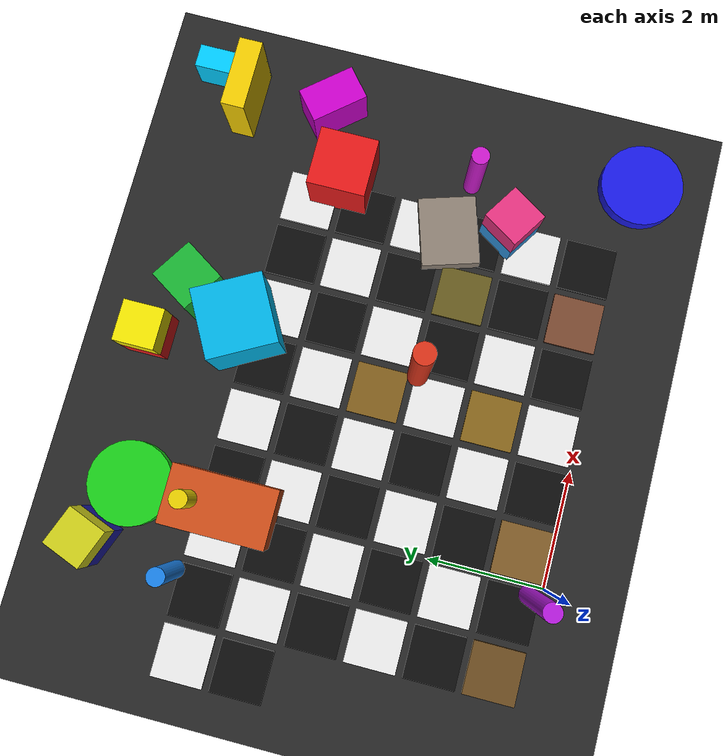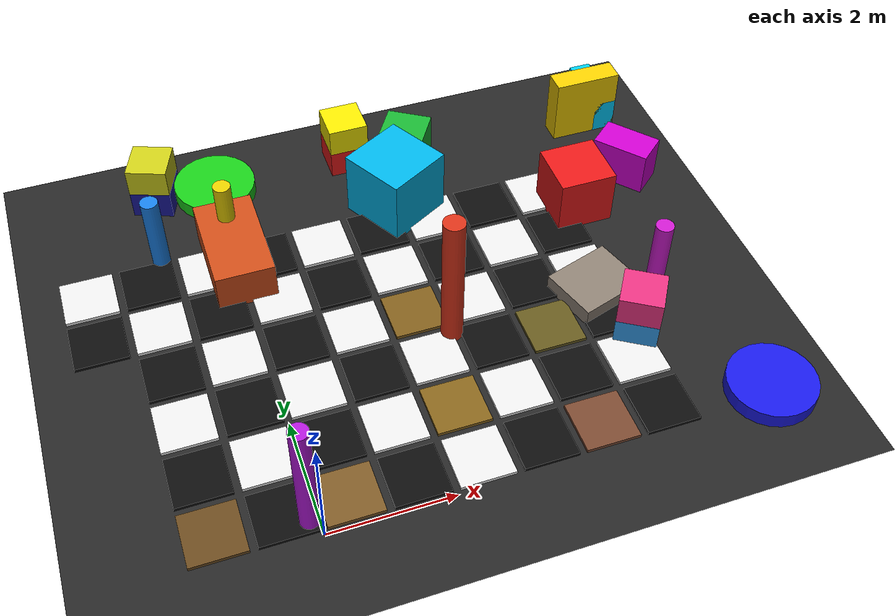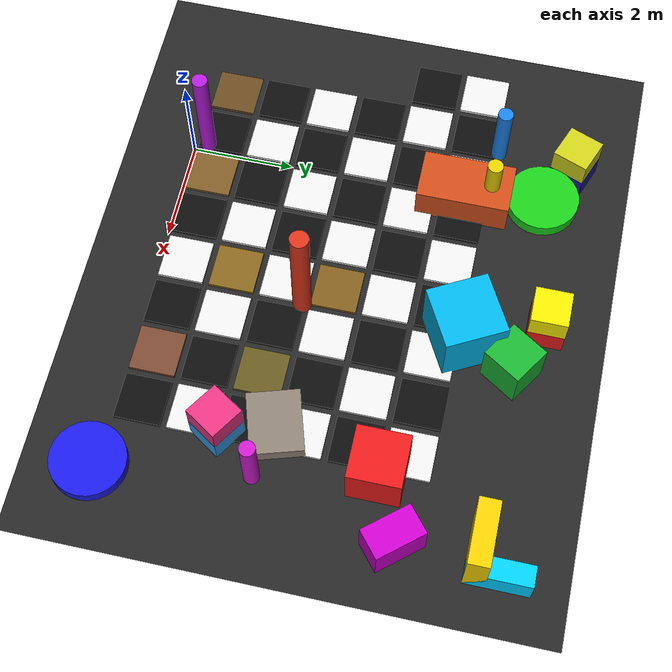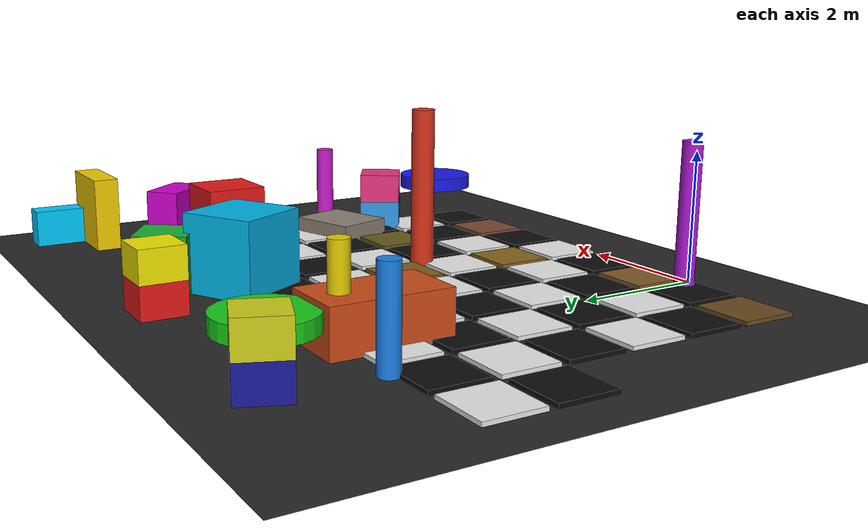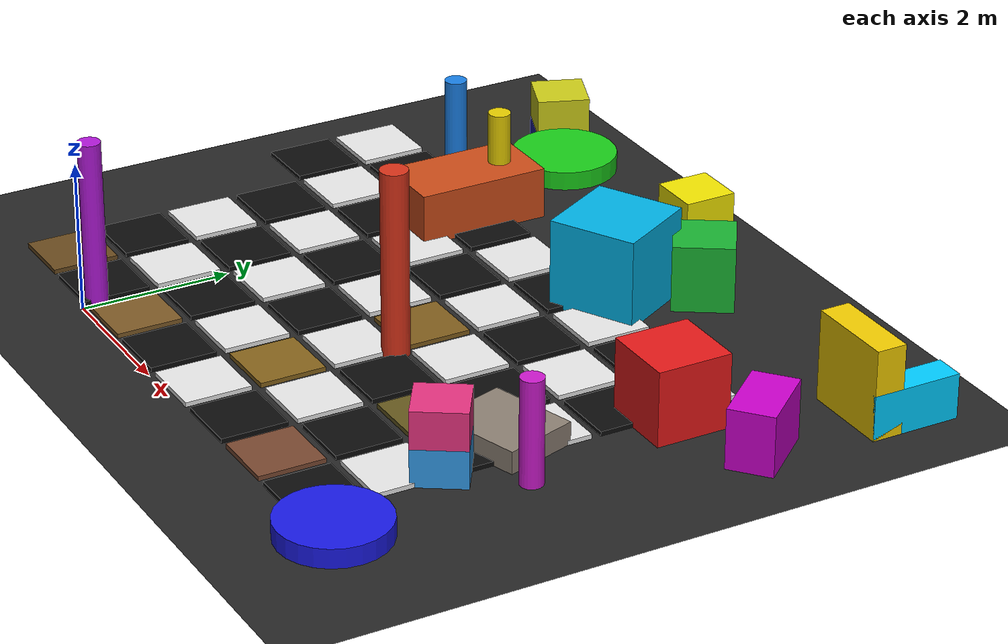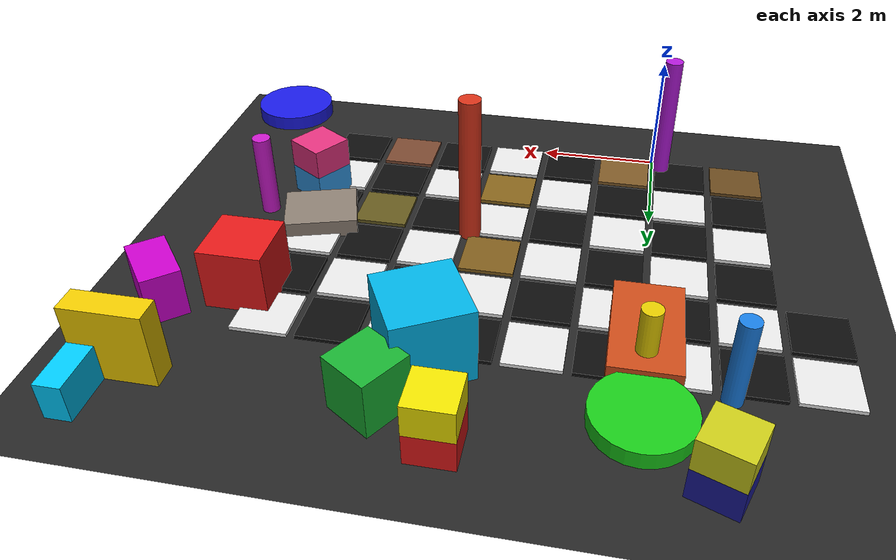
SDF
<sdf version="1.9">
 <world name="slam_world_v5_realistic">
  <model name="ground_plane">
   <static>true</static>
   <link name="ground_link">
    <collision name="collision">
     <geometry><plane><normal>0 0 1</normal><size>80 80</size></plane></geometry>
    </collision>
    <visual name="visual">
     <geometry><plane><normal>0 0 1</normal><size>80 80</size></plane></geometry>
     <material>
      <ambient>0.12 0.12 0.12 1</ambient>
      <diffuse>0.15 0.15 0.15 1</diffuse>
      <specular>0.02 0.02 0.02 1</specular>
     </material>
    </visual>
   </link>
  </model>
  <model name="cb_46">
   <static>true</static>
   <pose>-2.500 4.500 0.030 0 0 0</pose>
   <link name="link">
    <collision name="col"><geometry><box><size>0.880 0.880 0.060</size></box></geometry></collision>
    <visual name="vis">
     <geometry><box><size>0.880 0.880 0.060</size></box></geometry>
     <material>
      <ambient>0.050 0.050 0.050 1</ambient>
      <diffuse>0.050 0.050 0.050 1</diffuse>
      <specular>0.020 0.020 0.020 1</specular>
     </material>
    </visual>
   </link>
  </model>
  <model name="cb_47">
   <static>true</static>
   <pose>-2.500 5.500 0.030 0 0 0</pose>
   <link name="link">
    <collision name="col"><geometry><box><size>0.880 0.880 0.060</size></box></geometry></collision>
    <visual name="vis">
     <geometry><box><size>0.880 0.880 0.060</size></box></geometry>
     <material>
      <ambient>0.910 0.910 0.910 1</ambient>
      <diffuse>0.910 0.910 0.910 1</diffuse>
      <specular>0.080 0.080 0.080 1</specular>
     </material>
    </visual>
   </link>
  </model>
  <model name="cb_54">
   <static>true</static>
   <pose>-1.500 0.500 0.030 0 0 0</pose>
   <link name="link">
    <collision name="col"><geometry><box><size>0.880 0.880 0.060</size></box></geometry></collision>
    <visual name="vis">
     <geometry><box><size>0.880 0.880 0.060</size></box></geometry>
     <material>
      <ambient>0.413 0.290 0.121 1</ambient>
      <diffuse>0.413 0.290 0.121 1</diffuse>
      <specular>0.020 0.020 0.020 1</specular>
     </material>
    </visual>
   </link>
  </model>
  <model name="cb_55">
   <static>true</static>
   <pose>-1.500 1.500 0.030 0 0 0</pose>
   <link name="link">
    <collision name="col"><geometry><box><size>0.880 0.880 0.060</size></box></geometry></collision>
    <visual name="vis">
     <geometry><box><size>0.880 0.880 0.060</size></box></geometry>
     <material>
      <ambient>0.050 0.050 0.050 1</ambient>
      <diffuse>0.050 0.050 0.050 1</diffuse>
      <specular>0.020 0.020 0.020 1</specular>
     </material>
    </visual>
   </link>
  </model>
  <model name="cb_56">
   <static>true</static>
   <pose>-1.500 2.500 0.030 0 0 0</pose>
   <link name="link">
    <collision name="col"><geometry><box><size>0.880 0.880 0.060</size></box></geometry></collision>
    <visual name="vis">
     <geometry><box><size>0.880 0.880 0.060</size></box></geometry>
     <material>
      <ambient>0.910 0.910 0.910 1</ambient>
      <diffuse>0.910 0.910 0.910 1</diffuse>
      <specular>0.080 0.080 0.080 1</specular>
     </material>
    </visual>
   </link>
  </model>
  <model name="cb_57">
   <static>true</static>
   <pose>-1.500 3.500 0.030 0 0 0</pose>
   <link name="link">
    <collision name="col"><geometry><box><size>0.880 0.880 0.060</size></box></geometry></collision>
    <visual name="vis">
     <geometry><box><size>0.880 0.880 0.060</size></box></geometry>
     <material>
      <ambient>0.050 0.050 0.050 1</ambient>
      <diffuse>0.050 0.050 0.050 1</diffuse>
      <specular>0.020 0.020 0.020 1</specular>
     </material>
    </visual>
   </link>
  </model>
  <model name="cb_58">
   <static>true</static>
   <pose>-1.500 4.500 0.030 0 0 0</pose>
   <link name="link">
    <collision name="col"><geometry><box><size>0.880 0.880 0.060</size></box></geometry></collision>
    <visual name="vis">
     <geometry><box><size>0.880 0.880 0.060</size></box></geometry>
     <material>
      <ambient>0.910 0.910 0.910 1</ambient>
      <diffuse>0.910 0.910 0.910 1</diffuse>
      <specular>0.080 0.080 0.080 1</specular>
     </material>
    </visual>
   </link>
  </model>
  <model name="cb_59">
   <static>true</static>
   <pose>-1.500 5.500 0.030 0 0 0</pose>
   <link name="link">
    <collision name="col"><geometry><box><size>0.880 0.880 0.060</size></box></geometry></collision>
    <visual name="vis">
     <geometry><box><size>0.880 0.880 0.060</size></box></geometry>
     <material>
      <ambient>0.050 0.050 0.050 1</ambient>
      <diffuse>0.050 0.050 0.050 1</diffuse>
      <specular>0.020 0.020 0.020 1</specular>
     </material>
    </visual>
   </link>
  </model>
  <model name="cb_66">
   <static>true</static>
   <pose>-0.500 0.500 0.030 0 0 0</pose>
   <link name="link">
    <collision name="col"><geometry><box><size>0.880 0.880 0.060</size></box></geometry></collision>
    <visual name="vis">
     <geometry><box><size>0.880 0.880 0.060</size></box></geometry>
     <material>
      <ambient>0.050 0.050 0.050 1</ambient>
      <diffuse>0.050 0.050 0.050 1</diffuse>
      <specular>0.020 0.020 0.020 1</specular>
     </material>
    </visual>
   </link>
  </model>
  <model name="cb_67">
   <static>true</static>
   <pose>-0.500 1.500 0.030 0 0 0</pose>
   <link name="link">
    <collision name="col"><geometry><box><size>0.880 0.880 0.060</size></box></geometry></collision>
    <visual name="vis">
     <geometry><box><size>0.880 0.880 0.060</size></box></geometry>
     <material>
      <ambient>0.910 0.910 0.910 1</ambient>
      <diffuse>0.910 0.910 0.910 1</diffuse>
      <specular>0.080 0.080 0.080 1</specular>
     </material>
    </visual>
   </link>
  </model>
  <model name="cb_68">
   <static>true</static>
   <pose>-0.500 2.500 0.030 0 0 0</pose>
   <link name="link">
    <collision name="col"><geometry><box><size>0.880 0.880 0.060</size></box></geometry></collision>
    <visual name="vis">
     <geometry><box><size>0.880 0.880 0.060</size></box></geometry>
     <material>
      <ambient>0.050 0.050 0.050 1</ambient>
      <diffuse>0.050 0.050 0.050 1</diffuse>
      <specular>0.020 0.020 0.020 1</specular>
     </material>
    </visual>
   </link>
  </model>
  <model name="cb_69">
   <static>true</static>
   <pose>-0.500 3.500 0.030 0 0 0</pose>
   <link name="link">
    <collision name="col"><geometry><box><size>0.880 0.880 0.060</size></box></geometry></collision>
    <visual name="vis">
     <geometry><box><size>0.880 0.880 0.060</size></box></geometry>
     <material>
      <ambient>0.910 0.910 0.910 1</ambient>
      <diffuse>0.910 0.910 0.910 1</diffuse>
      <specular>0.080 0.080 0.080 1</specular>
     </material>
    </visual>
   </link>
  </model>
  <model name="cb_70">
   <static>true</static>
   <pose>-0.500 4.500 0.030 0 0 0</pose>
   <link name="link">
    <collision name="col"><geometry><box><size>0.880 0.880 0.060</size></box></geometry></collision>
    <visual name="vis">
     <geometry><box><size>0.880 0.880 0.060</size></box></geometry>
     <material>
      <ambient>0.050 0.050 0.050 1</ambient>
      <diffuse>0.050 0.050 0.050 1</diffuse>
      <specular>0.020 0.020 0.020 1</specular>
     </material>
    </visual>
   </link>
  </model>
  <model name="cb_71">
   <static>true</static>
   <pose>-0.500 5.500 0.030 0 0 0</pose>
   <link name="link">
    <collision name="col"><geometry><box><size>0.880 0.880 0.060</size></box></geometry></collision>
    <visual name="vis">
     <geometry><box><size>0.880 0.880 0.060</size></box></geometry>
     <material>
      <ambient>0.910 0.910 0.910 1</ambient>
      <diffuse>0.910 0.910 0.910 1</diffuse>
      <specular>0.080 0.080 0.080 1</specular>
     </material>
    </visual>
   </link>
  </model>
  <model name="cb_78">
   <static>true</static>
   <pose>0.500 0.500 0.030 0 0 0</pose>
   <link name="link">
    <collision name="col"><geometry><box><size>0.880 0.880 0.060</size></box></geometry></collision>
    <visual name="vis">
     <geometry><box><size>0.880 0.880 0.060</size></box></geometry>
     <material>
      <ambient>0.494 0.352 0.154 1</ambient>
      <diffuse>0.494 0.352 0.154 1</diffuse>
      <specular>0.020 0.020 0.020 1</specular>
     </material>
    </visual>
   </link>
  </model>
  <model name="cb_79">
   <static>true</static>
   <pose>0.500 1.500 0.030 0 0 0</pose>
   <link name="link">
    <collision name="col"><geometry><box><size>0.880 0.880 0.060</size></box></geometry></collision>
    <visual name="vis">
     <geometry><box><size>0.880 0.880 0.060</size></box></geometry>
     <material>
      <ambient>0.050 0.050 0.050 1</ambient>
      <diffuse>0.050 0.050 0.050 1</diffuse>
      <specular>0.020 0.020 0.020 1</specular>
     </material>
    </visual>
   </link>
  </model>
  <model name="cb_80">
   <static>true</static>
   <pose>0.500 2.500 0.030 0 0 0</pose>
   <link name="link">
    <collision name="col"><geometry><box><size>0.880 0.880 0.060</size></box></geometry></collision>
    <visual name="vis">
     <geometry><box><size>0.880 0.880 0.060</size></box></geometry>
     <material>
      <ambient>0.910 0.910 0.910 1</ambient>
      <diffuse>0.910 0.910 0.910 1</diffuse>
      <specular>0.080 0.080 0.080 1</specular>
     </material>
    </visual>
   </link>
  </model>
  <model name="cb_81">
   <static>true</static>
   <pose>0.500 3.500 0.030 0 0 0</pose>
   <link name="link">
    <collision name="col"><geometry><box><size>0.880 0.880 0.060</size></box></geometry></collision>
    <visual name="vis">
     <geometry><box><size>0.880 0.880 0.060</size></box></geometry>
     <material>
      <ambient>0.050 0.050 0.050 1</ambient>
      <diffuse>0.050 0.050 0.050 1</diffuse>
      <specular>0.020 0.020 0.020 1</specular>
     </material>
    </visual>
   </link>
  </model>
  <model name="cb_82">
   <static>true</static>
   <pose>0.500 4.500 0.030 0 0 0</pose>
   <link name="link">
    <collision name="col"><geometry><box><size>0.880 0.880 0.060</size></box></geometry></collision>
    <visual name="vis">
     <geometry><box><size>0.880 0.880 0.060</size></box></geometry>
     <material>
      <ambient>0.910 0.910 0.910 1</ambient>
      <diffuse>0.910 0.910 0.910 1</diffuse>
      <specular>0.080 0.080 0.080 1</specular>
     </material>
    </visual>
   </link>
  </model>
  <model name="cb_83">
   <static>true</static>
   <pose>0.500 5.500 0.030 0 0 0</pose>
   <link name="link">
    <collision name="col"><geometry><box><size>0.880 0.880 0.060</size></box></geometry></collision>
    <visual name="vis">
     <geometry><box><size>0.880 0.880 0.060</size></box></geometry>
     <material>
      <ambient>0.050 0.050 0.050 1</ambient>
      <diffuse>0.050 0.050 0.050 1</diffuse>
      <specular>0.020 0.020 0.020 1</specular>
     </material>
    </visual>
   </link>
  </model>
  <model name="cb_90">
   <static>true</static>
   <pose>1.500 0.500 0.030 0 0 0</pose>
   <link name="link">
    <collision name="col"><geometry><box><size>0.880 0.880 0.060</size></box></geometry></collision>
    <visual name="vis">
     <geometry><box><size>0.880 0.880 0.060</size></box></geometry>
     <material>
      <ambient>0.050 0.050 0.050 1</ambient>
      <diffuse>0.050 0.050 0.050 1</diffuse>
      <specular>0.020 0.020 0.020 1</specular>
     </material>
    </visual>
   </link>
  </model>
  <model name="cb_91">
   <static>true</static>
   <pose>1.500 1.500 0.030 0 0 0</pose>
   <link name="link">
    <collision name="col"><geometry><box><size>0.880 0.880 0.060</size></box></geometry></collision>
    <visual name="vis">
     <geometry><box><size>0.880 0.880 0.060</size></box></geometry>
     <material>
      <ambient>0.910 0.910 0.910 1</ambient>
      <diffuse>0.910 0.910 0.910 1</diffuse>
      <specular>0.080 0.080 0.080 1</specular>
     </material>
    </visual>
   </link>
  </model>
  <model name="cb_92">
   <static>true</static>
   <pose>1.500 2.500 0.030 0 0 0</pose>
   <link name="link">
    <collision name="col"><geometry><box><size>0.880 0.880 0.060</size></box></geometry></collision>
    <visual name="vis">
     <geometry><box><size>0.880 0.880 0.060</size></box></geometry>
     <material>
      <ambient>0.050 0.050 0.050 1</ambient>
      <diffuse>0.050 0.050 0.050 1</diffuse>
      <specular>0.020 0.020 0.020 1</specular>
     </material>
    </visual>
   </link>
  </model>
  <model name="cb_93">
   <static>true</static>
   <pose>1.500 3.500 0.030 0 0 0</pose>
   <link name="link">
    <collision name="col"><geometry><box><size>0.880 0.880 0.060</size></box></geometry></collision>
    <visual name="vis">
     <geometry><box><size>0.880 0.880 0.060</size></box></geometry>
     <material>
      <ambient>0.910 0.910 0.910 1</ambient>
      <diffuse>0.910 0.910 0.910 1</diffuse>
      <specular>0.080 0.080 0.080 1</specular>
     </material>
    </visual>
   </link>
  </model>
  <model name="cb_94">
   <static>true</static>
   <pose>1.500 4.500 0.030 0 0 0</pose>
   <link name="link">
    <collision name="col"><geometry><box><size>0.880 0.880 0.060</size></box></geometry></collision>
    <visual name="vis">
     <geometry><box><size>0.880 0.880 0.060</size></box></geometry>
     <material>
      <ambient>0.050 0.050 0.050 1</ambient>
      <diffuse>0.050 0.050 0.050 1</diffuse>
      <specular>0.020 0.020 0.020 1</specular>
     </material>
    </visual>
   </link>
  </model>
  <model name="cb_95">
   <static>true</static>
   <pose>1.500 5.500 0.030 0 0 0</pose>
   <link name="link">
    <collision name="col"><geometry><box><size>0.880 0.880 0.060</size></box></geometry></collision>
    <visual name="vis">
     <geometry><box><size>0.880 0.880 0.060</size></box></geometry>
     <material>
      <ambient>0.910 0.910 0.910 1</ambient>
      <diffuse>0.910 0.910 0.910 1</diffuse>
      <specular>0.080 0.080 0.080 1</specular>
     </material>
    </visual>
   </link>
  </model>
  <model name="cb_102">
   <static>true</static>
   <pose>2.500 0.500 0.030 0 0 0</pose>
   <link name="link">
    <collision name="col"><geometry><box><size>0.880 0.880 0.060</size></box></geometry></collision>
    <visual name="vis">
     <geometry><box><size>0.880 0.880 0.060</size></box></geometry>
     <material>
      <ambient>0.910 0.910 0.910 1</ambient>
      <diffuse>0.910 0.910 0.910 1</diffuse>
      <specular>0.080 0.080 0.080 1</specular>
     </material>
    </visual>
   </link>
  </model>
  <model name="cb_103">
   <static>true</static>
   <pose>2.500 1.500 0.030 0 0 0</pose>
   <link name="link">
    <collision name="col"><geometry><box><size>0.880 0.880 0.060</size></box></geometry></collision>
    <visual name="vis">
     <geometry><box><size>0.880 0.880 0.060</size></box></geometry>
     <material>
      <ambient>0.526 0.392 0.109 1</ambient>
      <diffuse>0.526 0.392 0.109 1</diffuse>
      <specular>0.020 0.020 0.020 1</specular>
     </material>
    </visual>
   </link>
  </model>
  <model name="cb_104">
   <static>true</static>
   <pose>2.500 2.500 0.030 0 0 0</pose>
   <link name="link">
    <collision name="col"><geometry><box><size>0.880 0.880 0.060</size></box></geometry></collision>
    <visual name="vis">
     <geometry><box><size>0.880 0.880 0.060</size></box></geometry>
     <material>
      <ambient>0.910 0.910 0.910 1</ambient>
      <diffuse>0.910 0.910 0.910 1</diffuse>
      <specular>0.080 0.080 0.080 1</specular>
     </material>
    </visual>
   </link>
  </model>
  <model name="cb_105">
   <static>true</static>
   <pose>2.500 3.500 0.030 0 0 0</pose>
   <link name="link">
    <collision name="col"><geometry><box><size>0.880 0.880 0.060</size></box></geometry></collision>
    <visual name="vis">
     <geometry><box><size>0.880 0.880 0.060</size></box></geometry>
     <material>
      <ambient>0.502 0.365 0.113 1</ambient>
      <diffuse>0.502 0.365 0.113 1</diffuse>
      <specular>0.020 0.020 0.020 1</specular>
     </material>
    </visual>
   </link>
  </model>
  <model name="cb_106">
   <static>true</static>
   <pose>2.500 4.500 0.030 0 0 0</pose>
   <link name="link">
    <collision name="col"><geometry><box><size>0.880 0.880 0.060</size></box></geometry></collision>
    <visual name="vis">
     <geometry><box><size>0.880 0.880 0.060</size></box></geometry>
     <material>
      <ambient>0.910 0.910 0.910 1</ambient>
      <diffuse>0.910 0.910 0.910 1</diffuse>
      <specular>0.080 0.080 0.080 1</specular>
     </material>
    </visual>
   </link>
  </model>
  <model name="cb_107">
   <static>true</static>
   <pose>2.500 5.500 0.030 0 0 0</pose>
   <link name="link">
    <collision name="col"><geometry><box><size>0.880 0.880 0.060</size></box></geometry></collision>
    <visual name="vis">
     <geometry><box><size>0.880 0.880 0.060</size></box></geometry>
     <material>
      <ambient>0.050 0.050 0.050 1</ambient>
      <diffuse>0.050 0.050 0.050 1</diffuse>
      <specular>0.020 0.020 0.020 1</specular>
     </material>
    </visual>
   </link>
  </model>
  <model name="cb_114">
   <static>true</static>
   <pose>3.500 0.500 0.030 0 0 0</pose>
   <link name="link">
    <collision name="col"><geometry><box><size>0.880 0.880 0.060</size></box></geometry></collision>
    <visual name="vis">
     <geometry><box><size>0.880 0.880 0.060</size></box></geometry>
     <material>
      <ambient>0.050 0.050 0.050 1</ambient>
      <diffuse>0.050 0.050 0.050 1</diffuse>
      <specular>0.020 0.020 0.020 1</specular>
     </material>
    </visual>
   </link>
  </model>
  <model name="cb_115">
   <static>true</static>
   <pose>3.500 1.500 0.030 0 0 0</pose>
   <link name="link">
    <collision name="col"><geometry><box><size>0.880 0.880 0.060</size></box></geometry></collision>
    <visual name="vis">
     <geometry><box><size>0.880 0.880 0.060</size></box></geometry>
     <material>
      <ambient>0.910 0.910 0.910 1</ambient>
      <diffuse>0.910 0.910 0.910 1</diffuse>
      <specular>0.080 0.080 0.080 1</specular>
     </material>
    </visual>
   </link>
  </model>
  <model name="cb_116">
   <static>true</static>
   <pose>3.500 2.500 0.030 0 0 0</pose>
   <link name="link">
    <collision name="col"><geometry><box><size>0.880 0.880 0.060</size></box></geometry></collision>
    <visual name="vis">
     <geometry><box><size>0.880 0.880 0.060</size></box></geometry>
     <material>
      <ambient>0.050 0.050 0.050 1</ambient>
      <diffuse>0.050 0.050 0.050 1</diffuse>
      <specular>0.020 0.020 0.020 1</specular>
     </material>
    </visual>
   </link>
  </model>
  <model name="cb_117">
   <static>true</static>
   <pose>3.500 3.500 0.030 0 0 0</pose>
   <link name="link">
    <collision name="col"><geometry><box><size>0.880 0.880 0.060</size></box></geometry></collision>
    <visual name="vis">
     <geometry><box><size>0.880 0.880 0.060</size></box></geometry>
     <material>
      <ambient>0.910 0.910 0.910 1</ambient>
      <diffuse>0.910 0.910 0.910 1</diffuse>
      <specular>0.080 0.080 0.080 1</specular>
     </material>
    </visual>
   </link>
  </model>
  <model name="cb_118">
   <static>true</static>
   <pose>3.500 4.500 0.030 0 0 0</pose>
   <link name="link">
    <collision name="col"><geometry><box><size>0.880 0.880 0.060</size></box></geometry></collision>
    <visual name="vis">
     <geometry><box><size>0.880 0.880 0.060</size></box></geometry>
     <material>
      <ambient>0.050 0.050 0.050 1</ambient>
      <diffuse>0.050 0.050 0.050 1</diffuse>
      <specular>0.020 0.020 0.020 1</specular>
     </material>
    </visual>
   </link>
  </model>
  <model name="cb_119">
   <static>true</static>
   <pose>3.500 5.500 0.030 0 0 0</pose>
   <link name="link">
    <collision name="col"><geometry><box><size>0.880 0.880 0.060</size></box></geometry></collision>
    <visual name="vis">
     <geometry><box><size>0.880 0.880 0.060</size></box></geometry>
     <material>
      <ambient>0.910 0.910 0.910 1</ambient>
      <diffuse>0.910 0.910 0.910 1</diffuse>
      <specular>0.080 0.080 0.080 1</specular>
     </material>
    </visual>
   </link>
  </model>
  <model name="cb_126">
   <static>true</static>
   <pose>4.500 0.500 0.030 0 0 0</pose>
   <link name="link">
    <collision name="col"><geometry><box><size>0.880 0.880 0.060</size></box></geometry></collision>
    <visual name="vis">
     <geometry><box><size>0.880 0.880 0.060</size></box></geometry>
     <material>
      <ambient>0.476 0.284 0.191 1</ambient>
      <diffuse>0.476 0.284 0.191 1</diffuse>
      <specular>0.020 0.020 0.020 1</specular>
     </material>
    </visual>
   </link>
  </model>
  <model name="cb_127">
   <static>true</static>
   <pose>4.500 1.500 0.030 0 0 0</pose>
   <link name="link">
    <collision name="col"><geometry><box><size>0.880 0.880 0.060</size></box></geometry></collision>
    <visual name="vis">
     <geometry><box><size>0.880 0.880 0.060</size></box></geometry>
     <material>
      <ambient>0.050 0.050 0.050 1</ambient>
      <diffuse>0.050 0.050 0.050 1</diffuse>
      <specular>0.020 0.020 0.020 1</specular>
     </material>
    </visual>
   </link>
  </model>
  <model name="cb_128">
   <static>true</static>
   <pose>4.500 2.500 0.030 0 0 0</pose>
   <link name="link">
    <collision name="col"><geometry><box><size>0.880 0.880 0.060</size></box></geometry></collision>
    <visual name="vis">
     <geometry><box><size>0.880 0.880 0.060</size></box></geometry>
     <material>
      <ambient>0.398 0.350 0.121 1</ambient>
      <diffuse>0.398 0.350 0.121 1</diffuse>
      <specular>0.020 0.020 0.020 1</specular>
     </material>
    </visual>
   </link>
  </model>
  <model name="cb_129">
   <static>true</static>
   <pose>4.500 3.500 0.030 0 0 0</pose>
   <link name="link">
    <collision name="col"><geometry><box><size>0.880 0.880 0.060</size></box></geometry></collision>
    <visual name="vis">
     <geometry><box><size>0.880 0.880 0.060</size></box></geometry>
     <material>
      <ambient>0.050 0.050 0.050 1</ambient>
      <diffuse>0.050 0.050 0.050 1</diffuse>
      <specular>0.020 0.020 0.020 1</specular>
     </material>
    </visual>
   </link>
  </model>
  <model name="cb_130">
   <static>true</static>
   <pose>4.500 4.500 0.030 0 0 0</pose>
   <link name="link">
    <collision name="col"><geometry><box><size>0.880 0.880 0.060</size></box></geometry></collision>
    <visual name="vis">
     <geometry><box><size>0.880 0.880 0.060</size></box></geometry>
     <material>
      <ambient>0.910 0.910 0.910 1</ambient>
      <diffuse>0.910 0.910 0.910 1</diffuse>
      <specular>0.080 0.080 0.080 1</specular>
     </material>
    </visual>
   </link>
  </model>
  <model name="cb_131">
   <static>true</static>
   <pose>4.500 5.500 0.030 0 0 0</pose>
   <link name="link">
    <collision name="col"><geometry><box><size>0.880 0.880 0.060</size></box></geometry></collision>
    <visual name="vis">
     <geometry><box><size>0.880 0.880 0.060</size></box></geometry>
     <material>
      <ambient>0.050 0.050 0.050 1</ambient>
      <diffuse>0.050 0.050 0.050 1</diffuse>
      <specular>0.020 0.020 0.020 1</specular>
     </material>
    </visual>
   </link>
  </model>
  <model name="cb_138">
   <static>true</static>
   <pose>5.500 0.500 0.030 0 0 0</pose>
   <link name="link">
    <collision name="col"><geometry><box><size>0.880 0.880 0.060</size></box></geometry></collision>
    <visual name="vis">
     <geometry><box><size>0.880 0.880 0.060</size></box></geometry>
     <material>
      <ambient>0.050 0.050 0.050 1</ambient>
      <diffuse>0.050 0.050 0.050 1</diffuse>
      <specular>0.020 0.020 0.020 1</specular>
     </material>
    </visual>
   </link>
  </model>
  <model name="cb_139">
   <static>true</static>
   <pose>5.500 1.500 0.030 0 0 0</pose>
   <link name="link">
    <collision name="col"><geometry><box><size>0.880 0.880 0.060</size></box></geometry></collision>
    <visual name="vis">
     <geometry><box><size>0.880 0.880 0.060</size></box></geometry>
     <material>
      <ambient>0.910 0.910 0.910 1</ambient>
      <diffuse>0.910 0.910 0.910 1</diffuse>
      <specular>0.080 0.080 0.080 1</specular>
     </material>
    </visual>
   </link>
  </model>
  <model name="cb_140">
   <static>true</static>
   <pose>5.500 2.500 0.030 0 0 0</pose>
   <link name="link">
    <collision name="col"><geometry><box><size>0.880 0.880 0.060</size></box></geometry></collision>
    <visual name="vis">
     <geometry><box><size>0.880 0.880 0.060</size></box></geometry>
     <material>
      <ambient>0.050 0.050 0.050 1</ambient>
      <diffuse>0.050 0.050 0.050 1</diffuse>
      <specular>0.020 0.020 0.020 1</specular>
     </material>
    </visual>
   </link>
  </model>
  <model name="cb_141">
   <static>true</static>
   <pose>5.500 3.500 0.030 0 0 0</pose>
   <link name="link">
    <collision name="col"><geometry><box><size>0.880 0.880 0.060</size></box></geometry></collision>
    <visual name="vis">
     <geometry><box><size>0.880 0.880 0.060</size></box></geometry>
     <material>
      <ambient>0.910 0.910 0.910 1</ambient>
      <diffuse>0.910 0.910 0.910 1</diffuse>
      <specular>0.080 0.080 0.080 1</specular>
     </material>
    </visual>
   </link>
  </model>
  <model name="cb_142">
   <static>true</static>
   <pose>5.500 4.500 0.030 0 0 0</pose>
   <link name="link">
    <collision name="col"><geometry><box><size>0.880 0.880 0.060</size></box></geometry></collision>
    <visual name="vis">
     <geometry><box><size>0.880 0.880 0.060</size></box></geometry>
     <material>
      <ambient>0.050 0.050 0.050 1</ambient>
      <diffuse>0.050 0.050 0.050 1</diffuse>
      <specular>0.020 0.020 0.020 1</specular>
     </material>
    </visual>
   </link>
  </model>
  <model name="cb_143">
   <static>true</static>
   <pose>5.500 5.500 0.030 0 0 0</pose>
   <link name="link">
    <collision name="col"><geometry><box><size>0.880 0.880 0.060</size></box></geometry></collision>
    <visual name="vis">
     <geometry><box><size>0.880 0.880 0.060</size></box></geometry>
     <material>
      <ambient>0.910 0.910 0.910 1</ambient>
      <diffuse>0.910 0.910 0.910 1</diffuse>
      <specular>0.080 0.080 0.080 1</specular>
     </material>
    </visual>
   </link>
  </model>
  <model name="pillar_3">
   <static>true</static>
   <pose>0.000 6.000 0.700 0 0 0</pose>
   <link name="link">
    <collision name="col">
     <geometry><cylinder><radius>0.150</radius><length>1.400</length></cylinder></geometry>
    </collision>
    <visual name="vis">
     <geometry><cylinder><radius>0.150</radius><length>1.400</length></cylinder></geometry>
     <material>
      <ambient>0.900 0.800 0.000 1</ambient>
      <diffuse>0.900 0.800 0.000 1</diffuse>
      <specular>0.250 0.250 0.250 1</specular>
     </material>
    </visual>
   </link>
  </model>
  <model name="pillar_7">
   <static>true</static>
   <pose>-1.200 6.000 0.700 0 0 0</pose>
   <link name="link">
    <collision name="col">
     <geometry><cylinder><radius>0.150</radius><length>1.400</length></cylinder></geometry>
    </collision>
    <visual name="vis">
     <geometry><cylinder><radius>0.150</radius><length>1.400</length></cylinder></geometry>
     <material>
      <ambient>0.100 0.500 0.900 1</ambient>
      <diffuse>0.100 0.500 0.900 1</diffuse>
      <specular>0.250 0.250 0.250 1</specular>
     </material>
    </visual>
   </link>
  </model>
  <model name="pillar_8">
   <static>true</static>
   <pose>6.500 2.800 0.700 0 0 0</pose>
   <link name="link">
    <collision name="col">
     <geometry><cylinder><radius>0.150</radius><length>1.400</length></cylinder></geometry>
    </collision>
    <visual name="vis">
     <geometry><cylinder><radius>0.150</radius><length>1.400</length></cylinder></geometry>
     <material>
      <ambient>0.800 0.100 0.800 1</ambient>
      <diffuse>0.800 0.100 0.800 1</diffuse>
      <specular>0.300 0.300 0.300 1</specular>
     </material>
    </visual>
   </link>
  </model>
  <model name="fat_cyl_1">
   <static>true</static>
   <pose>7.000 0.000 0.500 0 0 0</pose>
   <link name="link">
    <collision name="col">
     <geometry><cylinder><radius>0.700</radius><length>0.250</length></cylinder></geometry>
    </collision>
    <visual name="vis">
     <geometry><cylinder><radius>0.700</radius><length>0.250</length></cylinder></geometry>
     <material>
      <ambient>0.100 0.100 0.900 1</ambient>
      <diffuse>0.100 0.100 0.900 1</diffuse>
      <specular>0.400 0.400 0.400 1</specular>
     </material>
    </visual>
   </link>
  </model>
  <model name="fat_cyl_3">
   <static>true</static>
   <pose>0.000 7.000 0.500 0 0 0</pose>
   <link name="link">
    <collision name="col">
     <geometry><cylinder><radius>0.700</radius><length>0.250</length></cylinder></geometry>
    </collision>
    <visual name="vis">
     <geometry><cylinder><radius>0.700</radius><length>0.250</length></cylinder></geometry>
     <material>
      <ambient>0.100 0.800 0.100 1</ambient>
      <diffuse>0.100 0.800 0.100 1</diffuse>
      <specular>0.300 0.300 0.300 1</specular>
     </material>
    </visual>
   </link>
  </model>
  <model name="mbox_0">
   <static>true</static>
   <pose>6.000 5.000 0.500 0 0 0.000</pose>
   <link name="link">
    <collision name="col"><geometry><box><size>1.000 1.000 1.000</size></box></geometry></collision>
    <visual name="vis">
     <geometry><box><size>1.000 1.000 1.000</size></box></geometry>
     <material>
      <ambient>0.900 0.100 0.100 1</ambient>
      <diffuse>0.900 0.100 0.100 1</diffuse>
      <specular>0.150 0.150 0.150 1</specular>
     </material>
    </visual>
   </link>
  </model>
  <model name="mbox_8">
   <static>true</static>
   <pose>3.500 7.000 0.450 0 0 1.000</pose>
   <link name="link">
    <collision name="col"><geometry><box><size>0.800 0.800 0.900</size></box></geometry></collision>
    <visual name="vis">
     <geometry><box><size>0.800 0.800 0.900</size></box></geometry>
     <material>
      <ambient>0.100 0.700 0.200 1</ambient>
      <diffuse>0.100 0.700 0.200 1</diffuse>
      <specular>0.150 0.150 0.150 1</specular>
     </material>
    </visual>
   </link>
  </model>
  <model name="mbox_10">
   <static>true</static>
   <pose>7.200 5.500 0.400 0 0 0.700</pose>
   <link name="link">
    <collision name="col"><geometry><box><size>0.600 1.000 0.800</size></box></geometry></collision>
    <visual name="vis">
     <geometry><box><size>0.600 1.000 0.800</size></box></geometry>
     <material>
      <ambient>0.800 0.000 0.800 1</ambient>
      <diffuse>0.800 0.000 0.800 1</diffuse>
      <specular>0.150 0.150 0.150 1</specular>
     </material>
    </visual>
   </link>
  </model>
  <model name="stripe_lo_0">
   <static>true</static>
   <pose>2.500 7.500 0.250 0 0 0.000</pose>
   <link name="link">
    <collision name="col"><geometry><box><size>0.700 0.700 0.500</size></box></geometry></collision>
    <visual name="vis">
     <geometry><box><size>0.700 0.700 0.500</size></box></geometry>
     <material>
      <ambient>0.900 0.100 0.100 1</ambient>
      <diffuse>0.900 0.100 0.100 1</diffuse>
      <specular>0.300 0.300 0.300 1</specular>
     </material>
    </visual>
   </link>
  </model>
  <model name="stripe_hi_0">
   <static>true</static>
   <pose>2.500 7.500 0.750 0 0 0.000</pose>
   <link name="link">
    <collision name="col"><geometry><box><size>0.700 0.700 0.500</size></box></geometry></collision>
    <visual name="vis">
     <geometry><box><size>0.700 0.700 0.500</size></box></geometry>
     <material>
      <ambient>0.950 0.900 0.000 1</ambient>
      <diffuse>0.950 0.900 0.000 1</diffuse>
      <specular>0.300 0.300 0.300 1</specular>
     </material>
    </visual>
   </link>
  </model>
  <model name="stripe_lo_4">
   <static>true</static>
   <pose>5.800 2.000 0.250 0 0 1.000</pose>
   <link name="link">
    <collision name="col"><geometry><box><size>0.700 0.700 0.500</size></box></geometry></collision>
    <visual name="vis">
     <geometry><box><size>0.700 0.700 0.500</size></box></geometry>
     <material>
      <ambient>0.200 0.600 0.900 1</ambient>
      <diffuse>0.200 0.600 0.900 1</diffuse>
      <specular>0.300 0.300 0.300 1</specular>
     </material>
    </visual>
   </link>
  </model>
  <model name="stripe_hi_4">
   <static>true</static>
   <pose>5.800 2.000 0.750 0 0 1.000</pose>
   <link name="link">
    <collision name="col"><geometry><box><size>0.700 0.700 0.500</size></box></geometry></collision>
    <visual name="vis">
     <geometry><box><size>0.700 0.700 0.500</size></box></geometry>
     <material>
      <ambient>0.900 0.200 0.500 1</ambient>
      <diffuse>0.900 0.200 0.500 1</diffuse>
      <specular>0.300 0.300 0.300 1</specular>
     </material>
    </visual>
   </link>
  </model>
  <model name="stripe_lo_7">
   <static>true</static>
   <pose>-1.000 7.500 0.250 0 0 1.200</pose>
   <link name="link">
    <collision name="col"><geometry><box><size>0.700 0.700 0.500</size></box></geometry></collision>
    <visual name="vis">
     <geometry><box><size>0.700 0.700 0.500</size></box></geometry>
     <material>
      <ambient>0.100 0.100 0.600 1</ambient>
      <diffuse>0.100 0.100 0.600 1</diffuse>
      <specular>0.300 0.300 0.300 1</specular>
     </material>
    </visual>
   </link>
  </model>
  <model name="stripe_hi_7">
   <static>true</static>
   <pose>-1.000 7.500 0.750 0 0 1.200</pose>
   <link name="link">
    <collision name="col"><geometry><box><size>0.700 0.700 0.500</size></box></geometry></collision>
    <visual name="vis">
     <geometry><box><size>0.700 0.700 0.500</size></box></geometry>
     <material>
      <ambient>0.800 0.800 0.100 1</ambient>
      <diffuse>0.800 0.800 0.100 1</diffuse>
      <specular>0.300 0.300 0.300 1</specular>
     </material>
    </visual>
   </link>
  </model>
  <model name="corner_a_1">
   <static>true</static>
   <pose>7.000 7.000 0.600 0 0 0.000</pose>
   <link name="link">
    <collision name="col"><geometry><box><size>1.200 0.400 1.200</size></box></geometry></collision>
    <visual name="vis">
     <geometry><box><size>1.200 0.400 1.200</size></box></geometry>
     <material>
      <ambient>0.950 0.800 0.000 1</ambient>
      <diffuse>0.950 0.800 0.000 1</diffuse>
      <specular>0.150 0.150 0.150 1</specular>
     </material>
    </visual>
   </link>
  </model>
  <model name="corner_b_1">
   <static>true</static>
   <pose>7.400 7.400 0.300 0 0 0.000</pose>
   <link name="link">
    <collision name="col"><geometry><box><size>0.400 1.200 0.600</size></box></geometry></collision>
    <visual name="vis">
     <geometry><box><size>0.400 1.200 0.600</size></box></geometry>
     <material>
      <ambient>0.000 0.800 1.000 1</ambient>
      <diffuse>0.000 0.800 1.000 1</diffuse>
      <specular>0.150 0.150 0.150 1</specular>
     </material>
    </visual>
   </link>
  </model>
  <model name="tower_0">
   <static>true</static>
   <pose>2.942 2.904 1.250 0 0 0</pose>
   <link name="link">
    <collision name="col">
     <geometry><cylinder><radius>0.180</radius><length>2.500</length></cylinder></geometry>
    </collision>
    <visual name="vis">
     <geometry><cylinder><radius>0.180</radius><length>2.500</length></cylinder></geometry>
     <material>
      <ambient>0.850 0.200 0.100 1</ambient>
      <diffuse>0.850 0.200 0.100 1</diffuse>
      <specular>0.400 0.400 0.400 1</specular>
     </material>
    </visual>
   </link>
  </model>
  <model name="tower_4">
   <static>true</static>
   <pose>-0.150 0.254 1.100 0 0 0</pose>
   <link name="link">
    <collision name="col">
     <geometry><cylinder><radius>0.150</radius><length>2.200</length></cylinder></geometry>
    </collision>
    <visual name="vis">
     <geometry><cylinder><radius>0.150</radius><length>2.200</length></cylinder></geometry>
     <material>
      <ambient>0.700 0.100 0.850 1</ambient>
      <diffuse>0.700 0.100 0.850 1</diffuse>
      <specular>0.400 0.400 0.400 1</specular>
     </material>
    </visual>
   </link>
  </model>
  <model name="plat_low_2">
   <static>true</static>
   <pose>5.500 3.000 0.150 0 0 0.300</pose>
   <link name="link">
    <collision name="col"><geometry><box><size>1.200 1.000 0.300</size></box></geometry></collision>
    <visual name="vis">
     <geometry><box><size>1.200 1.000 0.300</size></box></geometry>
     <material>
      <ambient>0.550 0.500 0.450 1</ambient>
      <diffuse>0.550 0.500 0.450 1</diffuse>
      <specular>0.040 0.040 0.040 1</specular>
     </material>
    </visual>
   </link>
  </model>
  <model name="plat_mid_0">
   <static>true</static>
   <pose>0.000 5.500 0.350 0 0 0.000</pose>
   <link name="link">
    <collision name="col"><geometry><box><size>1.000 1.800 0.700</size></box></geometry></collision>
    <visual name="vis">
     <geometry><box><size>1.000 1.800 0.700</size></box></geometry>
     <material>
      <ambient>0.800 0.300 0.100 1</ambient>
      <diffuse>0.800 0.300 0.100 1</diffuse>
      <specular>0.150 0.150 0.150 1</specular>
     </material>
    </visual>
   </link>
  </model>
  <model name="plat_hi_1">
   <static>true</static>
   <pose>3.000 6.000 0.600 0 0 0.500</pose>
   <link name="link">
    <collision name="col"><geometry><box><size>1.200 1.200 1.200</size></box></geometry></collision>
    <visual name="vis">
     <geometry><box><size>1.200 1.200 1.200</size></box></geometry>
     <material>
      <ambient>0.000 0.700 0.900 1</ambient>
      <diffuse>0.000 0.700 0.900 1</diffuse>
      <specular>0.250 0.250 0.250 1</specular>
     </material>
    </visual>
   </link>
  </model>
 </world>
</sdf>
